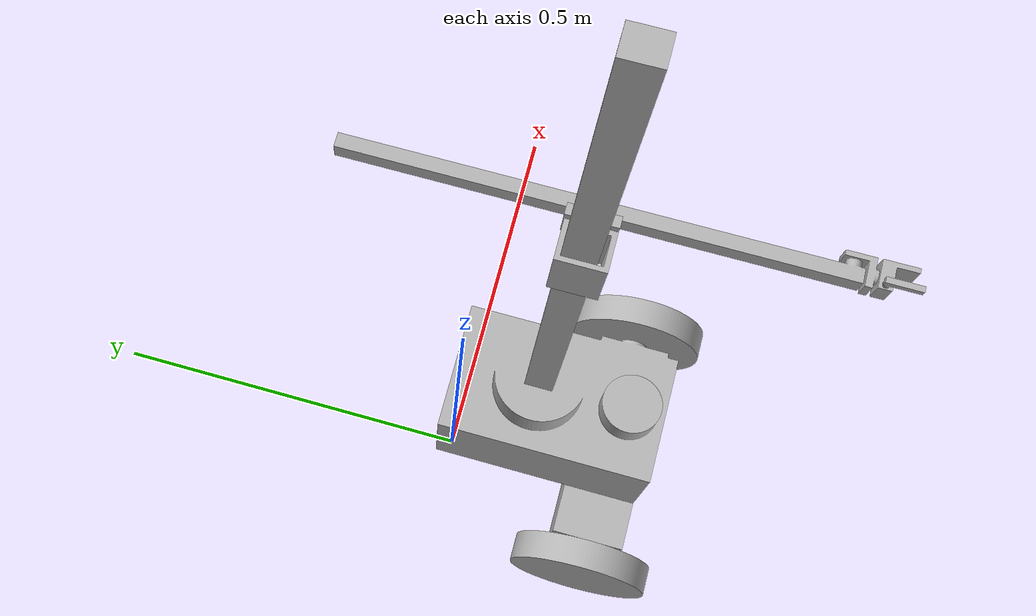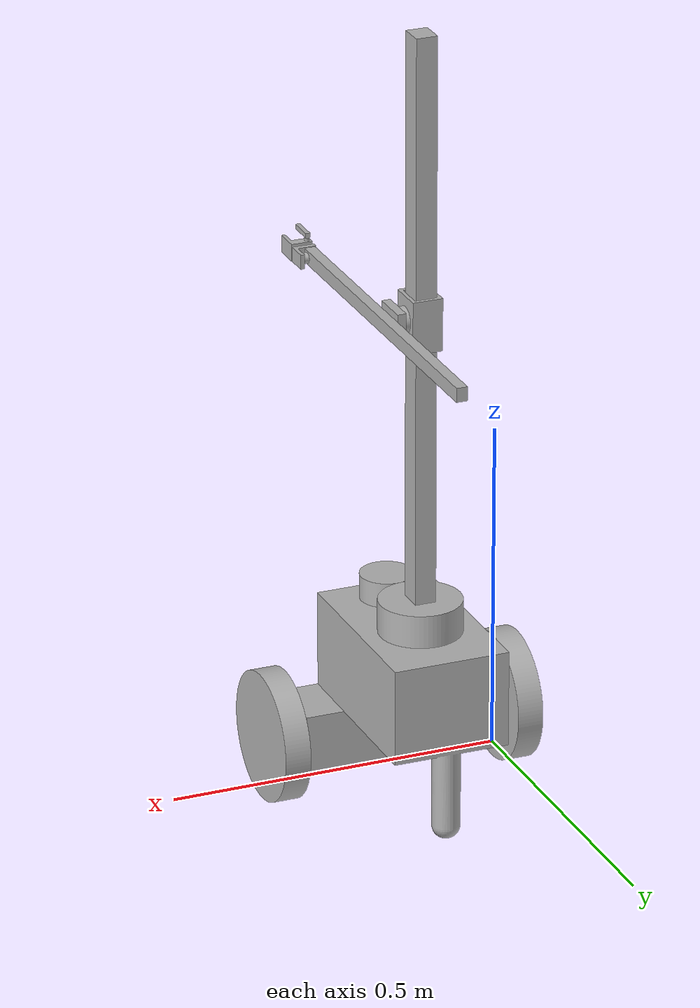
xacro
<?xml version="1.0" ?>
<robot name="daisy_urdf_new" xmlns:xacro="http://www.ros.org/wiki/xacro">

<xacro:include filename="$(find daisy_urdf_new_description)/urdf/materials.xacro" />
<xacro:include filename="$(find daisy_urdf_new_description)/urdf/daisy_urdf_new.ros2control" />
<xacro:include filename="$(find daisy_urdf_new_description)/urdf/daisy_urdf_new.gazebo" />
<link name="base_link">
  <inertial>
    <origin xyz="0.0712649855773507 -0.15079345730111376 0.04910761692816323" rpy="0 0 0"/>
    <mass value="92.72588975961706"/>
    <inertia ixx="1.19065" iyy="0.841338" izz="1.074932" ixy="-0.009959" iyz="-0.20334" ixz="-0.011912"/>
  </inertial>
  <visual>
    <origin xyz="0 0 0" rpy="0 0 0"/>
    <geometry>
      <mesh filename="file://$(find daisy_urdf_new_description)/meshes/base_link.stl" scale="0.001 0.001 0.001"/>
    </geometry>
    <material name="silver"/>
  </visual>
  <collision>
    <origin xyz="0 0 0" rpy="0 0 0"/>
    <geometry>
      <mesh filename="file://$(find daisy_urdf_new_description)/meshes/base_link.stl" scale="0.001 0.001 0.001"/>
    </geometry>
  </collision>
</link>

<link name="left_wheel_1">
  <inertial>
    <origin xyz="0.019999933309998913 2.475073197505395e-07 -3.0093397575953196e-07" rpy="0 0 0"/>
    <mass value="9.864600932271951"/>
    <inertia ixx="0.049323" iyy="0.025977" izz="0.025977" ixy="0.0" iyz="0.0" ixz="-0.0"/>
  </inertial>
  <visual>
    <origin xyz="-0.234857 0.228904 0.043263" rpy="0 0 0"/>
    <geometry>
      <mesh filename="file://$(find daisy_urdf_new_description)/meshes/left_wheel_1.stl" scale="0.001 0.001 0.001"/>
    </geometry>
    <material name="silver"/>
  </visual>
  <collision>
    <origin xyz="-0.234857 0.228904 0.043263" rpy="0 0 0"/>
    <geometry>
      <mesh filename="file://$(find daisy_urdf_new_description)/meshes/left_wheel_1.stl" scale="0.001 0.001 0.001"/>
    </geometry>
  </collision>
</link>

<link name="right_wheel_1">
  <inertial>
    <origin xyz="-0.020000066690001067 2.475073173913156e-07 -3.009339784448839e-07" rpy="0 0 0"/>
    <mass value="9.86460093227195"/>
    <inertia ixx="0.049323" iyy="0.025977" izz="0.025977" ixy="0.0" iyz="-0.0" ixz="0.0"/>
  </inertial>
  <visual>
    <origin xyz="0.098792 0.228904 0.043263" rpy="0 0 0"/>
    <geometry>
      <mesh filename="file://$(find daisy_urdf_new_description)/meshes/right_wheel_1.stl" scale="0.001 0.001 0.001"/>
    </geometry>
    <material name="silver"/>
  </visual>
  <collision>
    <origin xyz="0.098792 0.228904 0.043263" rpy="0 0 0"/>
    <geometry>
      <mesh filename="file://$(find daisy_urdf_new_description)/meshes/right_wheel_1.stl" scale="0.001 0.001 0.001"/>
    </geometry>
  </collision>
</link>

<link name="lidar_1">
  <inertial>
    <origin xyz="3.0313904109124934e-08 -0.06554019981850395 0.019335000000000074" rpy="0 0 0"/>
    <mass value="1.5985167796332775"/>
    <inertia ixx="0.000869" iyy="0.000869" izz="0.00134" ixy="0.0" iyz="0.0" ixz="0.0"/>
  </inertial>
  <visual>
    <origin xyz="-0.07264 0.163749 -0.15" rpy="0 0 0"/>
    <geometry>
      <mesh filename="file://$(find daisy_urdf_new_description)/meshes/lidar_1.stl" scale="0.001 0.001 0.001"/>
    </geometry>
    <material name="silver"/>
  </visual>
  <collision>
    <origin xyz="-0.07264 0.163749 -0.15" rpy="0 0 0"/>
    <geometry>
      <mesh filename="file://$(find daisy_urdf_new_description)/meshes/lidar_1.stl" scale="0.001 0.001 0.001"/>
    </geometry>
  </collision>
</link>

<link name="shoulder_holder_1">
  <inertial>
    <origin xyz="0.006735470719732947 0.001457372946778293 -1.521566193041224e-07" rpy="0 0 0"/>
    <mass value="0.28267671486629115"/>
    <inertia ixx="0.000125" iyy="5.3e-05" izz="8.8e-05" ixy="1.6e-05" iyz="-1e-06" ixz="0.0"/>
  </inertial>
  <visual>
    <origin xyz="-0.106605 0.096491 -0.784913" rpy="0 0 0"/>
    <geometry>
      <mesh filename="file://$(find daisy_urdf_new_description)/meshes/shoulder_holder_1.stl" scale="0.001 0.001 0.001"/>
    </geometry>
    <material name="silver"/>
  </visual>
  <collision>
    <origin xyz="-0.106605 0.096491 -0.784913" rpy="0 0 0"/>
    <geometry>
      <mesh filename="file://$(find daisy_urdf_new_description)/meshes/shoulder_holder_1.stl" scale="0.001 0.001 0.001"/>
    </geometry>
  </collision>
</link>

<link name="arm_1">
  <inertial>
    <origin xyz="0.04768022768194596 0.08487881721136446 0.2596123177716294" rpy="0 0 0"/>
    <mass value="1.6541745304478335"/>
    <inertia ixx="0.04356" iyy="0.002173" izz="0.045586" ixy="0.009457" iyz="-0.000608" ixz="0.000132"/>
  </inertial>
  <visual>
    <origin xyz="-0.062409 0.091893 -0.526479" rpy="0 0 0"/>
    <geometry>
      <mesh filename="file://$(find daisy_urdf_new_description)/meshes/arm_1.stl" scale="0.001 0.001 0.001"/>
    </geometry>
    <material name="silver"/>
  </visual>
  <collision>
    <origin xyz="-0.062409 0.091893 -0.526479" rpy="0 0 0"/>
    <geometry>
      <mesh filename="file://$(find daisy_urdf_new_description)/meshes/arm_1.stl" scale="0.001 0.001 0.001"/>
    </geometry>
  </collision>
</link>

<link name="wrist_up_down_1">
  <inertial>
    <origin xyz="-0.004232817181143517 -0.013351635019161257 -0.00012907659505356772" rpy="0 0 0"/>
    <mass value="0.08492179070156351"/>
    <inertia ixx="1.3e-05" iyy="1.1e-05" izz="1.7e-05" ixy="-5e-06" iyz="-0.0" ixz="-0.0"/>
  </inertial>
  <visual>
    <origin xyz="-0.184981 0.268617 -0.781954" rpy="0 0 0"/>
    <geometry>
      <mesh filename="file://$(find daisy_urdf_new_description)/meshes/wrist_up_down_1.stl" scale="0.001 0.001 0.001"/>
    </geometry>
    <material name="silver"/>
  </visual>
  <collision>
    <origin xyz="-0.184981 0.268617 -0.781954" rpy="0 0 0"/>
    <geometry>
      <mesh filename="file://$(find daisy_urdf_new_description)/meshes/wrist_up_down_1.stl" scale="0.001 0.001 0.001"/>
    </geometry>
  </collision>
</link>

<link name="wrist_rotate_1">
  <inertial>
    <origin xyz="0.005257141731330267 -0.011043852350751837 1.746822745418708e-05" rpy="0 0 0"/>
    <mass value="0.1372813411027509"/>
    <inertia ixx="1.9e-05" iyy="2.5e-05" izz="2.7e-05" ixy="5e-06" iyz="-0.0" ixz="0.0"/>
  </inertial>
  <visual>
    <origin xyz="-0.179121 0.296018 -0.781995" rpy="0 0 0"/>
    <geometry>
      <mesh filename="file://$(find daisy_urdf_new_description)/meshes/wrist_rotate_1.stl" scale="0.001 0.001 0.001"/>
    </geometry>
    <material name="silver"/>
  </visual>
  <collision>
    <origin xyz="-0.179121 0.296018 -0.781995" rpy="0 0 0"/>
    <geometry>
      <mesh filename="file://$(find daisy_urdf_new_description)/meshes/wrist_rotate_1.stl" scale="0.001 0.001 0.001"/>
    </geometry>
  </collision>
</link>

<link name="gripper_1">
  <inertial>
    <origin xyz="0.003483170119140927 -0.015509004683038952 0.004787822113007767" rpy="0 0 0"/>
    <mass value="0.016467704072736098"/>
    <inertia ixx="2e-06" iyy="0.0" izz="2e-06" ixy="0.0" iyz="-0.0" ixz="0.0"/>
  </inertial>
  <visual>
    <origin xyz="-0.169998 0.306019 -0.799091" rpy="0 0 0"/>
    <geometry>
      <mesh filename="file://$(find daisy_urdf_new_description)/meshes/gripper_1.stl" scale="0.001 0.001 0.001"/>
    </geometry>
    <material name="silver"/>
  </visual>
  <collision>
    <origin xyz="-0.169998 0.306019 -0.799091" rpy="0 0 0"/>
    <geometry>
      <mesh filename="file://$(find daisy_urdf_new_description)/meshes/gripper_1.stl" scale="0.001 0.001 0.001"/>
    </geometry>
  </collision>
</link>

<link name="chest_rod_1">
  <inertial>
    <origin xyz="3.031390412300272e-08 2.4288168073982597e-07 0.44" rpy="0 0 0"/>
    <mass value="8.835828929696392"/>
    <inertia ixx="0.571309" iyy="0.571013" izz="0.001912" ixy="6.7e-05" iyz="0.0" ixz="-0.0"/>
  </inertial>
  <visual>
    <origin xyz="-0.07264 0.100455 -0.201166" rpy="0 0 0"/>
    <geometry>
      <mesh filename="file://$(find daisy_urdf_new_description)/meshes/chest_rod_1.stl" scale="0.001 0.001 0.001"/>
    </geometry>
    <material name="silver"/>
  </visual>
  <collision>
    <origin xyz="-0.07264 0.100455 -0.201166" rpy="0 0 0"/>
    <geometry>
      <mesh filename="file://$(find daisy_urdf_new_description)/meshes/chest_rod_1.stl" scale="0.001 0.001 0.001"/>
    </geometry>
  </collision>
</link>

<link name="chest_slider_1">
  <inertial>
    <origin xyz="-0.06721943506194489 0.23797408706079784 -0.061642604380709454" rpy="0 0 0"/>
    <mass value="0.7986184654805082"/>
    <inertia ixx="0.0007" iyy="0.000684" izz="0.000589" ixy="4e-06" iyz="-3e-06" ixz="-1.3e-05"/>
  </inertial>
  <visual>
    <origin xyz="-0.144281 0.340856 -0.842332" rpy="0 0 0"/>
    <geometry>
      <mesh filename="file://$(find daisy_urdf_new_description)/meshes/chest_slider_1.stl" scale="0.001 0.001 0.001"/>
    </geometry>
    <material name="silver"/>
  </visual>
  <collision>
    <origin xyz="-0.144281 0.340856 -0.842332" rpy="0 0 0"/>
    <geometry>
      <mesh filename="file://$(find daisy_urdf_new_description)/meshes/chest_slider_1.stl" scale="0.001 0.001 0.001"/>
    </geometry>
  </collision>
</link>

<joint name="left_wheel_link" type="continuous">
  <origin xyz="0.234857 -0.228904 -0.043263" rpy="0 0 0"/>
  <parent link="base_link"/>
  <child link="left_wheel_1"/>
  <axis xyz="1.0 0.0 0.0"/>
</joint>

<joint name="right_wheel_link" type="continuous">
  <origin xyz="-0.098792 -0.228904 -0.043263" rpy="0 0 0"/>
  <parent link="base_link"/>
  <child link="right_wheel_1"/>
  <axis xyz="-1.0 0.0 0.0"/>
</joint>

<joint name="lidar_link" type="fixed">
  <origin xyz="0.07264 -0.163749 0.15" rpy="0 0 0"/>
  <parent link="base_link"/>
  <child link="lidar_1"/>
</joint>

<joint name="shoulder_rotation_link" type="revolute">
  <origin xyz="-0.037676 0.244365 -0.057419" rpy="0 0 0"/>
  <parent link="chest_slider_1"/>
  <child link="shoulder_holder_1"/>
  <axis xyz="0.977391 0.211441 -0.0"/>
  <limit upper="1.570796" lower="-1.570796" effort="100" velocity="100"/>
</joint>

<joint name="arm_slider_link" type="prismatic">
  <origin xyz="-0.044196 0.004598 -0.258434" rpy="0 0 0"/>
  <parent link="shoulder_holder_1"/>
  <child link="arm_1"/>
  <axis xyz="0.211421 -0.9773 -0.013638"/>
  <limit upper="0.178985" lower="-0.172709" effort="100" velocity="100"/>
</joint>

<joint name="writst_u_d_link" type="revolute">
  <origin xyz="0.122572 -0.176724 0.255475" rpy="0 0 0"/>
  <parent link="arm_1"/>
  <child link="wrist_up_down_1"/>
  <axis xyz="0.977391 0.211441 -0.0"/>
  <limit upper="1.570796" lower="-1.570796" effort="100" velocity="100"/>
</joint>

<joint name="wrist_rotation_link" type="revolute">
  <origin xyz="-0.00586 -0.027401 4.1e-05" rpy="0 0 0"/>
  <parent link="wrist_up_down_1"/>
  <child link="wrist_rotate_1"/>
  <axis xyz="0.211421 -0.9773 -0.013638"/>
  <limit upper="1.570796" lower="-1.570796" effort="100" velocity="100"/>
</joint>

<joint name="gripper_link" type="revolute">
  <origin xyz="-0.009123 -0.010001 0.017096" rpy="0 0 0"/>
  <parent link="wrist_rotate_1"/>
  <child link="gripper_1"/>
  <axis xyz="0.002884 -0.01333 0.999907"/>
  <limit upper="0.523599" lower="-1.434661" effort="100" velocity="100"/>
</joint>

<joint name="Revolute 11" type="revolute">
  <origin xyz="0.07264 -0.100455 0.201166" rpy="0 0 0"/>
  <parent link="base_link"/>
  <child link="chest_rod_1"/>
  <axis xyz="0.0 0.0 1.0"/>
  <limit upper="1.570796" lower="-1.570796" effort="100" velocity="100"/>
</joint>

<joint name="Slider 12" type="prismatic">
  <origin xyz="0.071641 -0.240401 0.641166" rpy="0 0 0"/>
  <parent link="chest_rod_1"/>
  <child link="chest_slider_1"/>
  <axis xyz="-0.0 0.0 -1.0"/>
  <limit upper="0.342888" lower="-0.31382" effort="100" velocity="100"/>
</joint>

</robot>

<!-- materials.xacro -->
<robot name="daisy_urdf_new" xmlns:xacro="http://www.ros.org/wiki/xacro" >

<material name="silver">
  <color rgba="0.700 0.700 0.700 1.000"/>
</material>

</robot>

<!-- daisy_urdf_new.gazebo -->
<robot name="daisy_urdf_new" xmlns:xacro="http://www.ros.org/wiki/xacro" >

<xacro:property name="body_color" value="Gazebo/Silver" />

<gazebo reference="base_link">
  <material>${body_color}</material>
  <mu1>0.2</mu1>
  <mu2>0.2</mu2>
  <self_collide>true</self_collide>
  <gravity>true</gravity>
</gazebo>

<gazebo reference="left_wheel_1">
  <material>${body_color}</material>
  <mu1>0.2</mu1>
  <mu2>0.2</mu2>
  <self_collide>true</self_collide>
</gazebo>

<gazebo reference="right_wheel_1">
  <material>${body_color}</material>
  <mu1>0.2</mu1>
  <mu2>0.2</mu2>
  <self_collide>true</self_collide>
</gazebo>

<gazebo reference="lidar_1">
  <material>${body_color}</material>
  <mu1>0.2</mu1>
  <mu2>0.2</mu2>
  <self_collide>true</self_collide>
</gazebo>

<gazebo reference="shoulder_holder_1">
  <material>${body_color}</material>
  <mu1>0.2</mu1>
  <mu2>0.2</mu2>
  <self_collide>true</self_collide>
</gazebo>

<gazebo reference="arm_1">
  <material>${body_color}</material>
  <mu1>0.2</mu1>
  <mu2>0.2</mu2>
  <self_collide>true</self_collide>
</gazebo>

<gazebo reference="wrist_up_down_1">
  <material>${body_color}</material>
  <mu1>0.2</mu1>
  <mu2>0.2</mu2>
  <self_collide>true</self_collide>
</gazebo>

<gazebo reference="wrist_rotate_1">
  <material>${body_color}</material>
  <mu1>0.2</mu1>
  <mu2>0.2</mu2>
  <self_collide>true</self_collide>
</gazebo>

<gazebo reference="gripper_1">
  <material>${body_color}</material>
  <mu1>0.2</mu1>
  <mu2>0.2</mu2>
  <self_collide>true</self_collide>
</gazebo>

<gazebo reference="chest_rod_1">
  <material>${body_color}</material>
  <mu1>0.2</mu1>
  <mu2>0.2</mu2>
  <self_collide>true</self_collide>
</gazebo>

<gazebo reference="chest_slider_1">
  <material>${body_color}</material>
  <mu1>0.2</mu1>
  <mu2>0.2</mu2>
  <self_collide>true</self_collide>
</gazebo>

</robot>
